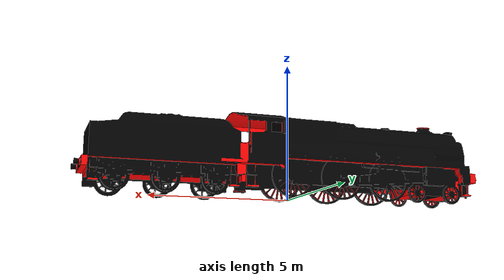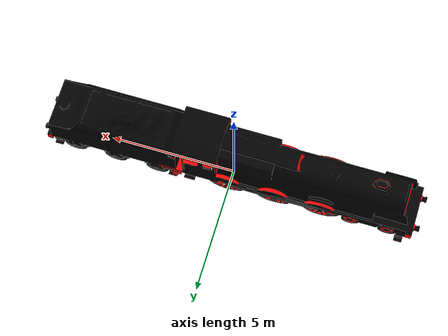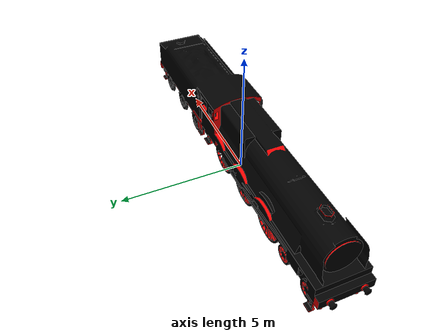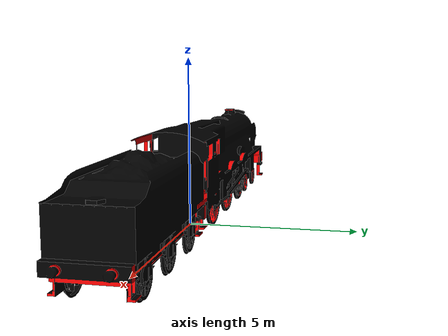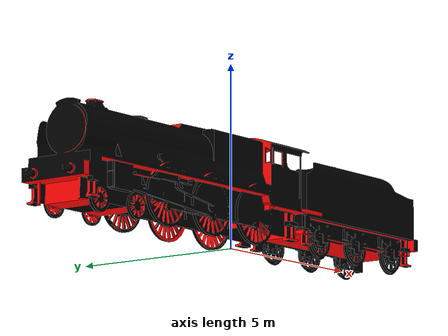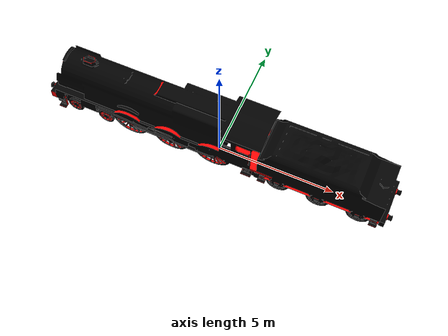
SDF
<?xml version="1.0" ?>
<sdf version="1.5">
  <model name="train_a">
    <static>true</static>
    <link name="train_a_link">
      <collision name="collision">
        <geometry>
          <mesh optimization="convex_hull">
            <uri>model://train_a/meshes/train_a.stl</uri>
          </mesh>
        </geometry>
      </collision>
      <visual name="visual">
        <geometry>
          <mesh>
            <uri>model://train_a/meshes/train_a.dae</uri>
          </mesh>
        </geometry>
      </visual>
    </link>
  </model>
</sdf>
